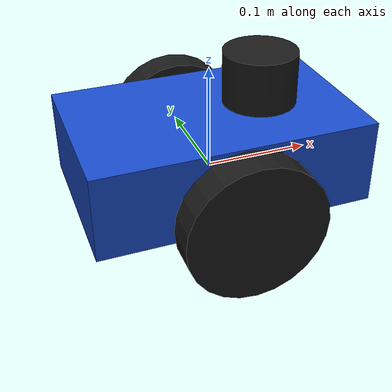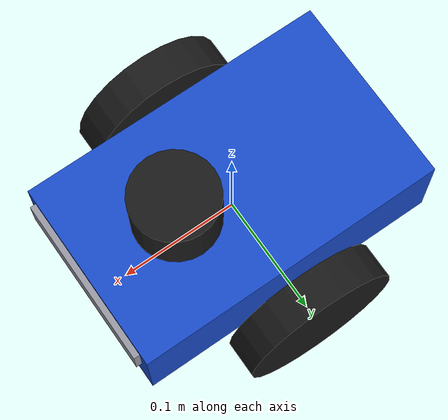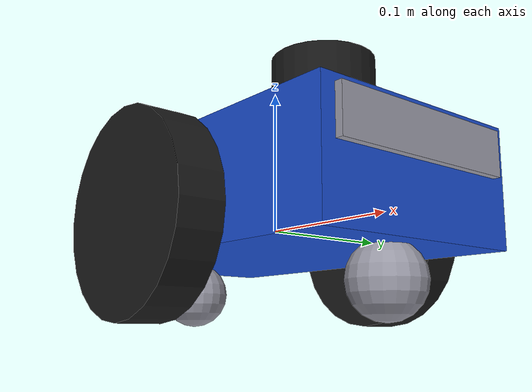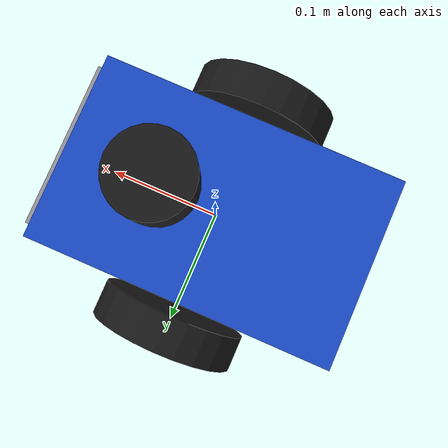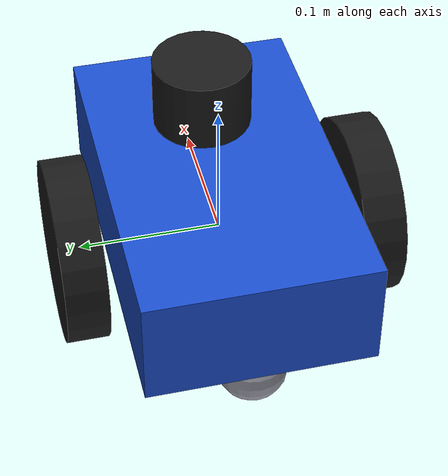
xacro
<?xml version="1.0"?>
<robot xmlns:xacro="http://www.ros.org/wiki/xacro" name="task_robot">

  <!-- ===== Numbers (meters / kg). wheel_radius and wheel_base match odom_calculator ===== -->
  <xacro:property name="wheel_radius" value="0.065"/>
  <xacro:property name="wheel_width"  value="0.03"/>
  <xacro:property name="wheel_base"   value="0.21"/>
  <xacro:property name="chassis_x"    value="0.26"/>
  <xacro:property name="chassis_y"    value="0.16"/>
  <xacro:property name="chassis_z"    value="0.08"/>
  <xacro:property name="chassis_zoff" value="0.02"/>
  <xacro:property name="caster_r"     value="0.025"/>
  <xacro:property name="stereo_baseline" value="0.12"/>
  <xacro:property name="cam_width"    value="640"/>
  <xacro:property name="cam_height"   value="480"/>
  <xacro:property name="cam_rate"     value="10"/>

  <material name="grey"><color rgba="0.6 0.6 0.65 1"/></material>
  <material name="black"><color rgba="0.1 0.1 0.1 1"/></material>
  <material name="blue"><color rgba="0.1 0.3 0.8 1"/></material>
  <material name="red"><color rgba="0.8 0.1 0.1 1"/></material>

  <!-- ===== Helpers for mass/inertia (Gazebo needs these) ===== -->
  <xacro:macro name="box_inertial" params="m x y z">
    <inertial>
      <mass value="${m}"/>
      <inertia ixx="${m/12*(y*y+z*z)}" ixy="0" ixz="0" iyy="${m/12*(x*x+z*z)}" iyz="0" izz="${m/12*(x*x+y*y)}"/>
    </inertial>
  </xacro:macro>

  <!-- ===== Chassis ===== -->
  <link name="base_link">
    <visual>
      <origin xyz="0 0 ${chassis_zoff}"/>
      <geometry><box size="${chassis_x} ${chassis_y} ${chassis_z}"/></geometry>
      <material name="blue"/>
    </visual>
    <collision>
      <origin xyz="0 0 ${chassis_zoff}"/>
      <geometry><box size="${chassis_x} ${chassis_y} ${chassis_z}"/></geometry>
    </collision>
    <inertial>
      <origin xyz="0 0 ${chassis_zoff}"/>
      <mass value="2.0"/>
      <inertia ixx="${2.0/12*(chassis_y*chassis_y+chassis_z*chassis_z)}" ixy="0" ixz="0"
               iyy="${2.0/12*(chassis_x*chassis_x+chassis_z*chassis_z)}" iyz="0"
               izz="${2.0/12*(chassis_x*chassis_x+chassis_y*chassis_y)}"/>
    </inertial>
  </link>

  <!-- ===== Drive wheels ===== -->
  <xacro:macro name="wheel" params="name y">
    <link name="${name}_wheel">
      <visual>
        <origin rpy="${pi/2} 0 0"/>
        <geometry><cylinder radius="${wheel_radius}" length="${wheel_width}"/></geometry>
        <material name="black"/>
      </visual>
      <collision>
        <origin rpy="${pi/2} 0 0"/>
        <geometry><cylinder radius="${wheel_radius}" length="${wheel_width}"/></geometry>
      </collision>
      <inertial>
        <mass value="0.3"/>
        <inertia ixx="${0.3/12*(3*wheel_radius*wheel_radius+wheel_width*wheel_width)}" ixy="0" ixz="0"
                 iyy="${0.3*wheel_radius*wheel_radius/2}" iyz="0"
                 izz="${0.3/12*(3*wheel_radius*wheel_radius+wheel_width*wheel_width)}"/>
      </inertial>
    </link>
    <joint name="${name}_wheel_joint" type="continuous">
      <parent link="base_link"/>
      <child link="${name}_wheel"/>
      <origin xyz="0 ${y} 0"/>
      <axis xyz="0 1 0"/>
    </joint>
    <gazebo reference="${name}_wheel">
      <mu1>1.0</mu1><mu2>1.0</mu2>
    </gazebo>
  </xacro:macro>
  <xacro:wheel name="left"  y="${wheel_base/2}"/>
  <xacro:wheel name="right" y="${-wheel_base/2}"/>

  <!-- ===== Passive casters (front and rear) so the robot stands on 4 points ===== -->
  <xacro:macro name="caster" params="name x">
    <link name="${name}">
      <visual><geometry><sphere radius="${caster_r}"/></geometry><material name="grey"/></visual>
      <collision><geometry><sphere radius="${caster_r}"/></geometry></collision>
      <inertial>
        <mass value="0.05"/>
        <inertia ixx="${0.4*0.05*caster_r*caster_r}" ixy="0" ixz="0" iyy="${0.4*0.05*caster_r*caster_r}" iyz="0" izz="${0.4*0.05*caster_r*caster_r}"/>
      </inertial>
    </link>
    <joint name="${name}_joint" type="fixed">
      <parent link="base_link"/>
      <child link="${name}"/>
      <origin xyz="${x} 0 ${caster_r - wheel_radius}"/>
    </joint>
    <gazebo reference="${name}">
      <mu1>0.01</mu1><mu2>0.01</mu2>
    </gazebo>
  </xacro:macro>
  <xacro:caster name="caster_front" x="0.10"/>
  <xacro:caster name="caster_rear"  x="-0.10"/>

  <!-- ===== IMU (inside the chassis) ===== -->
  <link name="imu_link">
    <visual><geometry><box size="0.02 0.02 0.01"/></geometry><material name="red"/></visual>
    <xacro:box_inertial m="0.02" x="0.02" y="0.02" z="0.01"/>
  </link>
  <joint name="imu_joint" type="fixed">
    <parent link="base_link"/>
    <child link="imu_link"/>
    <origin xyz="0 0 0.03"/>
  </joint>

  <gazebo reference="imu_link">
    <sensor name="imu_sensor" type="imu">
      <always_on>true</always_on>
      <update_rate>100</update_rate>
      <visualize>false</visualize>
      <imu>
        <angular_velocity>
          <x><noise type="gaussian"><mean>0.0</mean><stddev>0.0002</stddev></noise></x>
          <y><noise type="gaussian"><mean>0.0</mean><stddev>0.0002</stddev></noise></y>
          <z><noise type="gaussian"><mean>0.0</mean><stddev>0.0002</stddev></noise></z>
        </angular_velocity>
        <linear_acceleration>
          <x><noise type="gaussian"><mean>0.0</mean><stddev>0.017</stddev></noise></x>
          <y><noise type="gaussian"><mean>0.0</mean><stddev>0.017</stddev></noise></y>
          <z><noise type="gaussian"><mean>0.0</mean><stddev>0.017</stddev></noise></z>
        </linear_acceleration>
      </imu>
      <plugin name="imu_plugin" filename="libgazebo_ros_imu_sensor.so">
        <ros>
          <namespace>/imu</namespace>
          <remapping>~/out:=data</remapping>
        </ros>
        <frame_name>imu_link</frame_name>
        <initial_orientation_as_reference>false</initial_orientation_as_reference>
      </plugin>
    </sensor>
  </gazebo>

  <!-- ===== 2D LiDAR (on top) ===== -->
  <link name="lidar_link">
    <visual><geometry><cylinder radius="0.035" length="0.05"/></geometry><material name="black"/></visual>
    <collision><geometry><cylinder radius="0.035" length="0.05"/></geometry></collision>
    <inertial>
      <mass value="0.2"/>
      <inertia ixx="0.0001" ixy="0" ixz="0" iyy="0.0001" iyz="0" izz="0.0001"/>
    </inertial>
  </link>
  <joint name="lidar_joint" type="fixed">
    <parent link="base_link"/>
    <child link="lidar_link"/>
    <origin xyz="0.05 0 0.085"/>
  </joint>

  <gazebo reference="lidar_link">
    <sensor name="lidar_sensor" type="ray">
      <always_on>true</always_on>
      <update_rate>10</update_rate>
      <visualize>false</visualize>
      <ray>
        <scan>
          <horizontal>
            <samples>360</samples>
            <resolution>1</resolution>
            <min_angle>-3.14159</min_angle>
            <max_angle>3.14159</max_angle>
          </horizontal>
        </scan>
        <range>
          <min>0.12</min>
          <max>10.0</max>
          <resolution>0.01</resolution>
        </range>
        <noise>
          <type>gaussian</type>
          <mean>0.0</mean>
          <stddev>0.01</stddev>
        </noise>
      </ray>
      <plugin name="lidar_plugin" filename="libgazebo_ros_ray_sensor.so">
        <ros>
          <namespace>/</namespace>
          <remapping>~/out:=scan</remapping>
        </ros>
        <output_type>sensor_msgs/LaserScan</output_type>
        <frame_name>lidar_link</frame_name>
      </plugin>
    </sensor>
  </gazebo>

  <!-- ===== Stereo camera (front): two cameras side by side ===== -->
  <link name="stereo_link">
    <visual><geometry><box size="0.02 0.14 0.03"/></geometry><material name="grey"/></visual>
    <xacro:box_inertial m="0.1" x="0.02" y="0.14" z="0.03"/>
  </link>
  <joint name="stereo_joint" type="fixed">
    <parent link="base_link"/>
    <child link="stereo_link"/>
    <origin xyz="0.125 0 0.04"/>
  </joint>

  <!-- Each camera has 2 frames: *_link (x forward, how Gazebo looks) and
       *_optical_frame (z forward, x right, y down - the ROS image convention).
       Images are stamped with the OPTICAL frame. -->
  <xacro:macro name="stereo_cam" params="side y baseline">
    <link name="stereo_${side}_link">
      <inertial>
        <mass value="0.01"/>
        <inertia ixx="0.00001" ixy="0" ixz="0" iyy="0.00001" iyz="0" izz="0.00001"/>
      </inertial>
    </link>
    <joint name="stereo_${side}_joint" type="fixed">
      <parent link="stereo_link"/>
      <child link="stereo_${side}_link"/>
      <origin xyz="0 ${y} 0"/>
    </joint>
    <link name="stereo_${side}_optical_frame"/>
    <joint name="stereo_${side}_optical_joint" type="fixed">
      <parent link="stereo_${side}_link"/>
      <child link="stereo_${side}_optical_frame"/>
      <origin rpy="${-pi/2} 0 ${-pi/2}"/>
    </joint>

    <gazebo reference="stereo_${side}_link">
      <sensor name="stereo_${side}_sensor" type="camera">
        <always_on>true</always_on>
        <update_rate>${cam_rate}</update_rate>
        <visualize>false</visualize>
        <camera>
          <horizontal_fov>1.3962634</horizontal_fov>
          <image>
            <width>${cam_width}</width>
            <height>${cam_height}</height>
            <format>R8G8B8</format>
          </image>
          <clip><near>0.05</near><far>20.0</far></clip>
          <noise><type>gaussian</type><mean>0.0</mean><stddev>0.007</stddev></noise>
        </camera>
        <plugin name="stereo_${side}_plugin" filename="libgazebo_ros_camera.so">
          <ros><namespace>/stereo</namespace></ros>
          <camera_name>${side}</camera_name>
          <frame_name>stereo_${side}_optical_frame</frame_name>
          <hack_baseline>${baseline}</hack_baseline>
        </plugin>
      </sensor>
    </gazebo>
  </xacro:macro>
  <xacro:stereo_cam side="left"  y="${stereo_baseline/2}"  baseline="0.0"/>
  <xacro:stereo_cam side="right" y="${-stereo_baseline/2}" baseline="${stereo_baseline}"/>

  <gazebo>
    <plugin name="diff_drive" filename="libgazebo_ros_diff_drive.so">
      <ros><namespace>/</namespace></ros>
      <update_rate>50</update_rate>
      <left_joint>left_wheel_joint</left_joint>
      <right_joint>right_wheel_joint</right_joint>
      <wheel_separation>${wheel_base}</wheel_separation>
      <wheel_diameter>${2*wheel_radius}</wheel_diameter>
      <max_wheel_torque>5.0</max_wheel_torque>
      <max_wheel_acceleration>10.0</max_wheel_acceleration>
      <command_topic>cmd_vel</command_topic>
      <publish_odom>false</publish_odom>
      <publish_odom_tf>false</publish_odom_tf>
      <publish_wheel_tf>false</publish_wheel_tf>
      <odometry_frame>odom</odometry_frame>
      <robot_base_frame>base_link</robot_base_frame>
    </plugin>
  </gazebo>

  <!-- ===== Publish wheel joint angles (/joint_states): used for TF wheel frames AND as the
       'encoder' that wheel_tick_pub turns into ticks ===== -->
  <gazebo>
    <plugin name="joint_state_publisher" filename="libgazebo_ros_joint_state_publisher.so">
      <ros><remapping>~/out:=joint_states</remapping></ros>
      <update_rate>50</update_rate>
      <joint_name>left_wheel_joint</joint_name>
      <joint_name>right_wheel_joint</joint_name>
    </plugin>
  </gazebo>

  <!-- ===== GROUND TRUTH (testing only!) =====
       Gazebo reports where the robot REALLY is, so we can measure how good odometry and the EKF
       are. The robot's software must never use this topic. -->
  <gazebo>
    <plugin name="ground_truth" filename="libgazebo_ros_p3d.so">
      <ros>
        <namespace>/</namespace>
        <remapping>odom:=ground_truth/odom</remapping>
      </ros>
      <frame_name>world</frame_name>
      <body_name>base_link</body_name>
      <update_rate>50</update_rate>
      <gaussian_noise>0.0</gaussian_noise>
    </plugin>
  </gazebo>

</robot>
